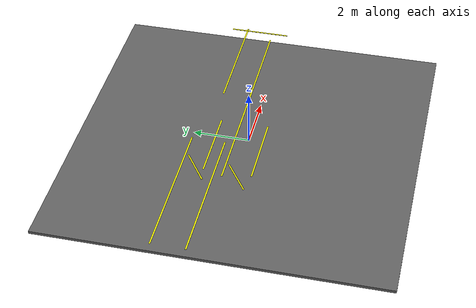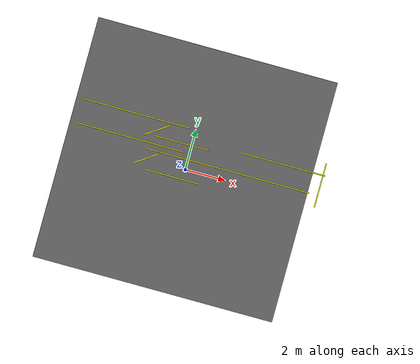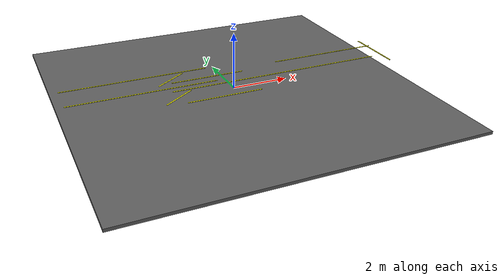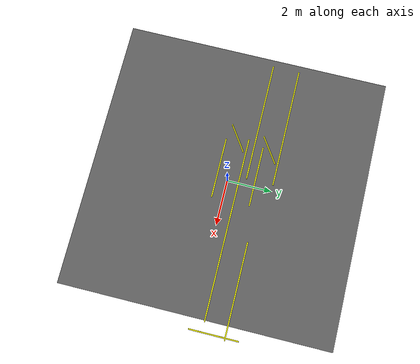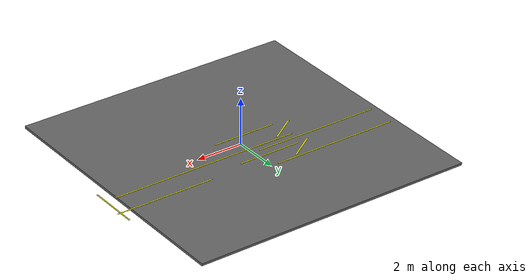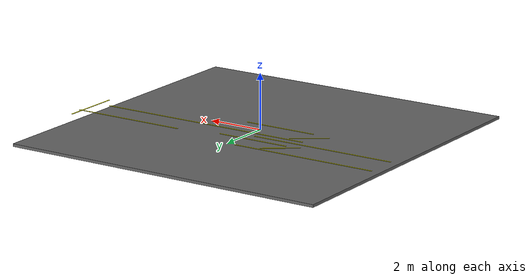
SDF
<?xml version="1.0" ?>
<sdf version="1.10">
  <world name="default">

    <light type="directional" name="sun">
      <cast_shadows>true</cast_shadows>
      <pose>0 0 10 0 0 0</pose>
      <diffuse>0.9 0.9 0.9 1</diffuse>
      <specular>0.5 0.5 0.5 1</specular>
      <direction>-0.4 0.2 -1</direction>
    </light>

    <model name="floor_plane">
      <static>true</static>
      <link name="floor_link">
        <collision name="floor_collision">
          <geometry>
            <box>
              <size>12 12 0.1</size>
            </box>
          </geometry>
          <pose>0 0 -0.05 0 0 0</pose>
        </collision>

        <visual name="floor_visual">
          <geometry>
            <box>
              <size>12 12 0.1</size>
            </box>
          </geometry>
          <pose>0 0 -0.05 0 0 0</pose>
          <material>
            <ambient>0.3 0.3 0.3 1</ambient>
            <diffuse>0.4 0.4 0.4 1</diffuse>
            <specular>0.1 0.1 0.1 1</specular>
          </material>
        </visual>
      </link>
    </model>

    <include>
      <uri>model://yellow_tape_lines_427</uri>
      <pose>0 0 0.01 0 0 0</pose>
    </include>

  </world>
</sdf>

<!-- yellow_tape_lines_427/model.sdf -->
<sdf version="1.10">
  <model name="yellow_tape_lines_427">
    <static>true</static>

    <!-- Tape thickness -->
    <!-- width = 0.05m (~2 inches), height = 0.005 -->

    <!-- Helper: each segment = box -->

    <!-- LEFT TOP 213" -->
    <link name="seg_1">
      <pose>-3.0 2.0 0.01 0 0 0</pose>
      <visual name="v">
        <geometry><box><size>5.41 0.05 0.005</size></box></geometry>
        <material><diffuse>1 1 0 1</diffuse></material>
      </visual>
    </link>

    <!-- LEFT BOTTOM 213" -->
    <link name="seg_2">
      <pose>-3.0 0.8 0.01 0 0 0</pose>
      <visual name="v">
        <geometry><box><size>5.41 0.05 0.005</size></box></geometry>
        <material><diffuse>1 1 0 1</diffuse></material>
      </visual>
    </link>

    <!-- CENTER LONG 320" -->
    <link name="seg_3">
      <pose>2.0 0.5 0.01 0 0 0</pose>
      <visual name="v">
        <geometry><box><size>8.13 0.05 0.005</size></box></geometry>
        <material><diffuse>1 1 0 1</diffuse></material>
      </visual>
    </link>

    <!-- CENTER LOWER 107" -->
    <link name="seg_4">
      <pose>-0.5 -0.5 0.01 0 0 0</pose>
      <visual name="v">
        <geometry><box><size>2.72 0.05 0.005</size></box></geometry>
        <material><diffuse>1 1 0 1</diffuse></material>
      </visual>
    </link>

    <!-- CENTER UPPER 107" -->
    <link name="seg_5">
      <pose>-0.5 1.2 0.01 0 0 0</pose>
      <visual name="v">
        <geometry><box><size>2.72 0.05 0.005</size></box></geometry>
        <material><diffuse>1 1 0 1</diffuse></material>
      </visual>
    </link>

    <!-- RIGHT BOX (166") -->
    <link name="seg_6">
      <pose>4.5 1.5 0.01 0 0 0</pose>
      <visual name="v">
        <geometry><box><size>4.22 0.05 0.005</size></box></geometry>
        <material><diffuse>1 1 0 1</diffuse></material>
      </visual>
    </link>

    <!-- RIGHT VERTICAL 86" -->
    <link name="seg_7">
      <pose>6.5 1.0 0.01 0 0 1.5708</pose>
      <visual name="v">
        <geometry><box><size>2.18 0.05 0.005</size></box></geometry>
        <material><diffuse>1 1 0 1</diffuse></material>
      </visual>
    </link>

    <!-- SMALL CONNECTORS (angled approximations) -->
    <link name="seg_8">
      <pose>-1.8 1.5 0.01 0 0 0.6</pose>
      <visual name="v">
        <geometry><box><size>1.37 0.05 0.005</size></box></geometry>
        <material><diffuse>1 1 0 1</diffuse></material>
      </visual>
    </link>

    <link name="seg_9">
      <pose>-2.0 0.0 0.01 0 0 0.6</pose>
      <visual name="v">
        <geometry><box><size>1.37 0.05 0.005</size></box></geometry>
        <material><diffuse>1 1 0 1</diffuse></material>
      </visual>
    </link>

  </model>
</sdf>
